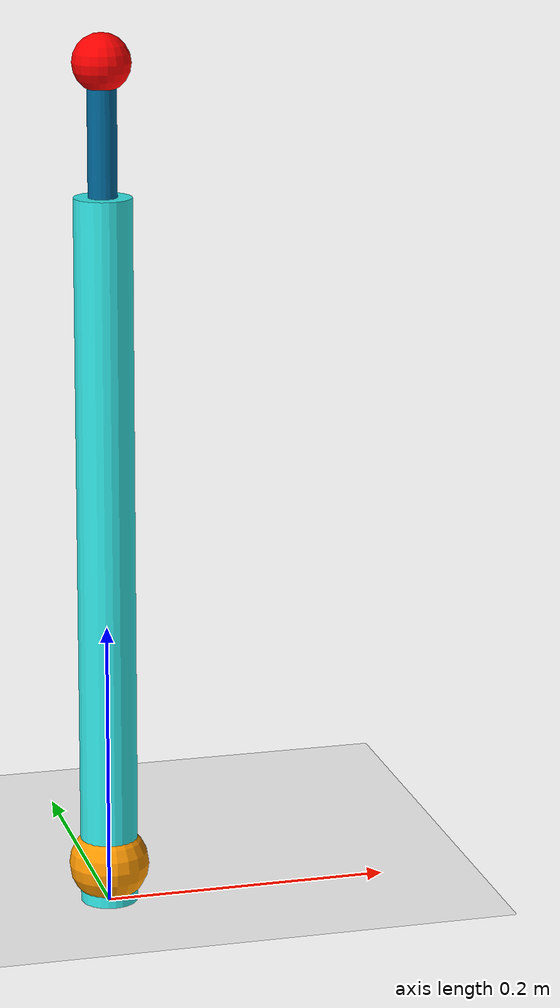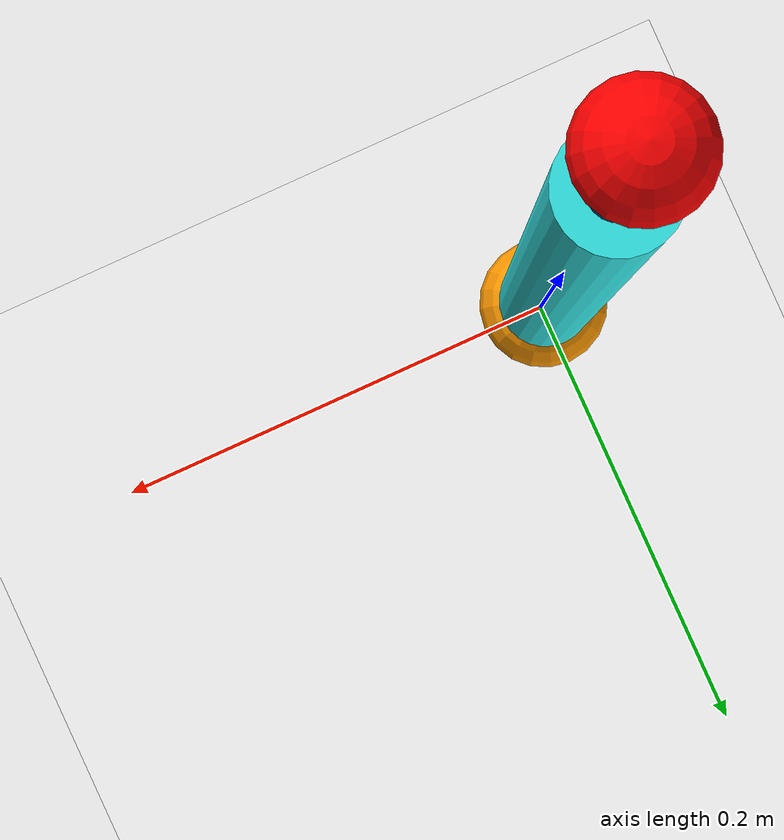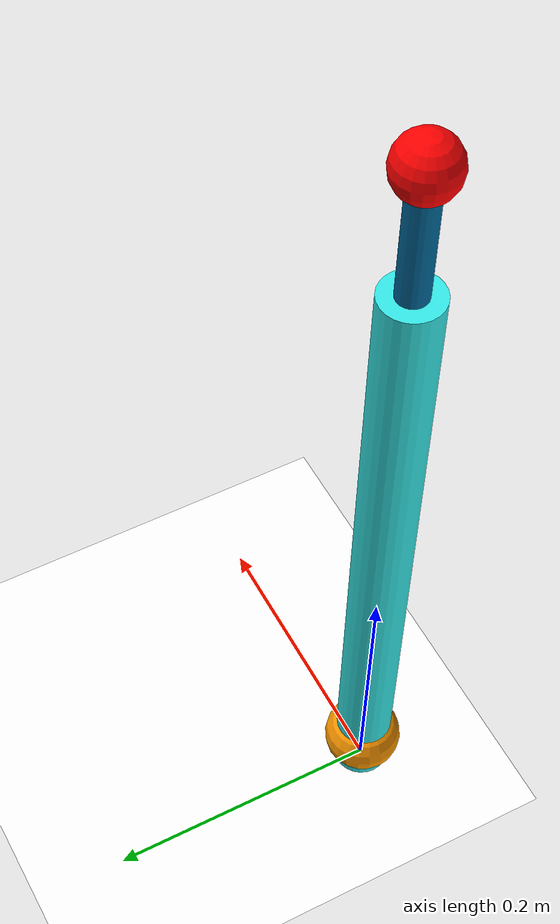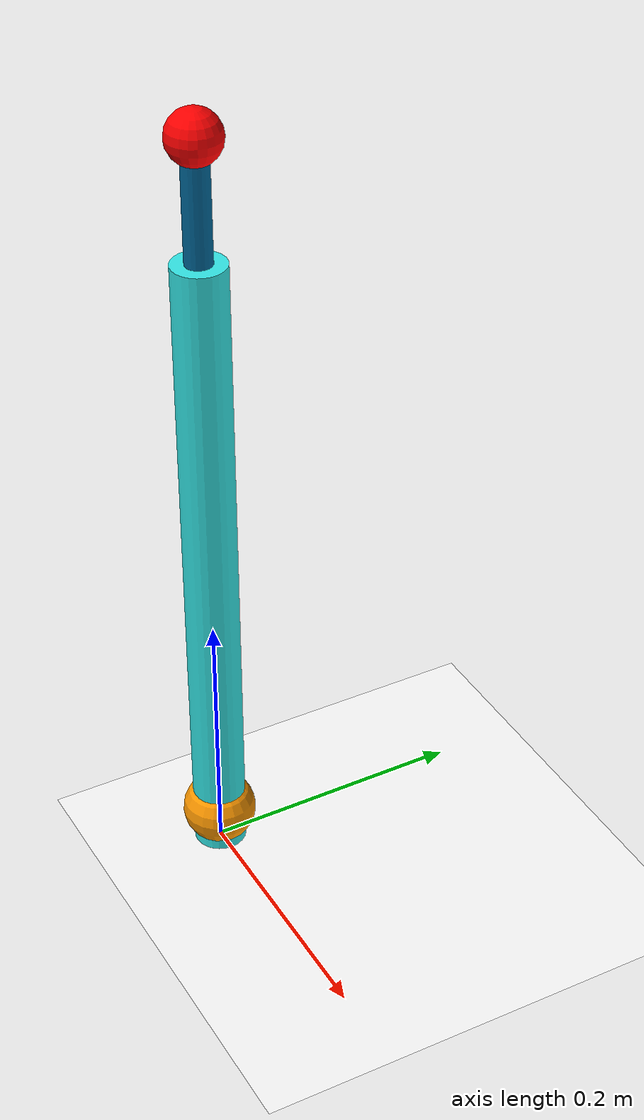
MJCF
<mujoco model="marrtino_arm">
    <custom>
        <numeric name="ndims" size="1" data="3"/>
        <numeric name="njoints" size="1" data="5"/>
    </custom>

	<compiler angle="radian" inertiafromgeom="true"/>

    <default>
		<joint armature="1" damping="1" limited="true"/>
		<geom contype="0" friction="1 0.1 0.1" rgba="0.7 0.7 0 1"/>
	</default>

    <option gravity="0 0 -9.81" integrator="RK4" timestep="0.01"/>

    <asset>
      <texture name="grid" type="2d" builtin="checker" rgb1=".6 .6 .6"
        rgb2=".8 .8 .8" width="100" height="100" mark="edge" markrgb="0.4 0.4 0.4"/>
      <material name="grid" texture="grid" texrepeat="10 10" texuniform="true"
        reflectance="0"/>
    </asset>

    <worldbody>

   	    <light name="top1" pos="0.5 0.5 1"/>
	    <light name="top2" pos="-0.5 0.5 1"/>
	    <light name="top3" pos="0.5 -0.5 1"/>
	    <light name="top4" pos="-0.5 -0.5 1"/>

		<!-- Arena -->
		<geom type="plane" conaffinity="1" contype="1" name="ground" pos="0.05 0.05 0" rgba="0.98 0.98 0.98 1" size="1 1 10"  material="grid"/>

		<!-- Arm -->
		<geom conaffinity="1" contype="1" fromto="0 0 0 0 0 0.09" name="root" rgba="0.9 0.4 0.6 1" size=".011" type="cylinder"/>
		<body name="base" pos="0 0 .091">
			<geom fromto="0 0 0 0 0 0.045" name="link0" rgba="0.0 0.4 0.6 1" size=".01" type="capsule"/>
			<joint axis="0 0 1" limited="true" range="-1.5707963267948966 1.5707963267948966" name="j0" pos="0 0 0" type="hinge"/>
            <geom fromto="0 0 0 0 0 0.01" name="jcolor0" rgba="0.0 0.0 1.0 0.5" size=".013" type="capsule"/>

            <body name="j0" pos="0 0 0.045">
				<geom fromto="0 0 0 0 0 0.11" name="link1" rgba="0.0 0.4 0.6 1" size=".01" type="capsule"/>
                <joint axis="0 1 0" limited="true" range="-1.5707963267948966 1.5707963267948966" name="j1" pos="0 0 0" type="hinge"/>
                <geom fromto="0 0 0 0 0 0.01" name="jcolor1" rgba="0.0 1.0 0.0 1" size=".012" type="capsule"/>

                <body name="j1" pos="0 0 0.11">
                    <geom fromto="0 0 0 0 0 0.11" name="link2" rgba="0.0 0.4 0.6 1" size=".01" type="capsule"/>
                    <joint axis="0 1 0" limited="true" range="-1.5707963267948966 1.5707963267948966" name="j2" pos="0 0 0" type="hinge"/>
                    <geom fromto="0 0 0 0 0 0.01" name="jcolor2" rgba="0.0 1.0 0.0 1" size=".012" type="capsule"/>

                    <body name="j2" pos="0 0 0.11">
                        <geom fromto="0 0 0 0 0 0.115" name="link3" rgba="0.0 0.4 0.6 1" size=".01" type="capsule"/>
                        <joint axis="0 1 0" limited="true" range="-1.5707963267948966 1.5707963267948966" name="j3" pos="0 0 0" type="hinge"/>
                        <geom fromto="0 0 0 0 0 0.01" name="jcolor3" rgba="0.0 1.0 0.0 1" size=".012" type="capsule"/>

                        <body name="j3" pos="0 0 0.115">
                            <geom fromto="0 0 0 0 0 0.12" name="link4" rgba="   0.0 0.4 0.6 1" size=".01" type="capsule"/>
                            <joint axis="1 0 0" limited="true" range="-1.5707963267948966 1.5707963267948966" name="j4" pos="0 0 0" type="hinge"/>
                            <geom fromto="0 0 0 0 0 0.01" name="jcolor4" rgba="1.0 0.0 0.0 1" size=".012" type="capsule"/>

                            <body name="fingertip" pos="0 0 0.12">
                                <geom contype="0" name="fingertip" pos="0 0 0" rgba="0.99 0.0 0.0 1" size=".020" type="sphere"/>
                            </body>
                        </body>
                    </body>
                </body>
			</body>
        </body>

		<!-- Target -->
		<body name="target" pos="0 0 .0281">
    		<geom conaffinity="1" contype="1" name="target" rgba="1 0.6 0 1" size=".028 0.001" type="sphere"/>
			<joint armature="0" axis="1 0 0" damping="0" limited="false" name="target_x" pos="0 0 0" type="slide"/>
			<joint armature="0" axis="0 1 0" damping="0" limited="false" name="target_y" pos="0 0 0"  type="slide"/>
		</body>

		<!-- Objects -->
		<body name="obstacle1" pos="0 0 0.251" >
            <geom name="obs1" rgba="0.2 0.9 0.9 1" type="cylinder" size="0.02 0.25" density="0.1" contype="1" conaffinity="1" />
            <joint name="obs1_x" type="slide" pos="0 0 0" axis="1 0 0" range="-0.6 0.6" stiffness="0" damping="0" frictionloss="0.001" armature="0" />
            <joint name="obs1_y" type="slide" pos="0 0 0" axis="0 1 0" range="-0.6 0.6" stiffness="0" damping="0" frictionloss="0.001" armature="0" />
        </body>

		<body name="obstacle2" pos="0 0 0.251" >
            <geom name="obs2" rgba="0.2 0.9 0.9 1" type="cylinder" size="0.02 0.25" density="0.1" contype="1" conaffinity="1" />
            <joint name="obs2_x" type="slide" pos="0 0 0" axis="1 0 0" range="-0.6 0.6" stiffness="0" damping="0" frictionloss="0.001" armature="0" />
            <joint name="obs2_y" type="slide" pos="0 0 0" axis="0 1 0" range="-0.6 0.6" stiffness="0" damping="0" frictionloss="0.001" armature="0" />
        </body>

		<body name="obstacle3" pos="0 0 0.251" >
            <geom name="obs3" type="cylinder" rgba="0.2 0.9 0.9 1" size="0.02 0.25" density="0.1" contype="1" conaffinity="1" />
            <joint type="slide" name="obs3_x" pos="0 0 0" axis="1 0 0" range="-0.6 0.6" stiffness="0" damping="0" frictionloss="0.001" armature="0" />
            <joint type="slide" name="obs3_y" pos="0 0 0" axis="0 1 0" range="-0.6 0.6" stiffness="0" damping="0" frictionloss="0.001" armature="0" />
        </body>

	</worldbody>

    <actuator>
		<motor ctrllimited="true" ctrlrange="-1.0 1.0" gear="200.0" joint="j0"/>
		<motor ctrllimited="true" ctrlrange="-1.0 1.0" gear="200.0" joint="j1"/>
		<motor ctrllimited="true" ctrlrange="-1.0 1.0" gear="200.0" joint="j2"/>
		<motor ctrllimited="true" ctrlrange="-1.0 1.0" gear="200.0" joint="j3"/>
		<motor ctrllimited="true" ctrlrange="-1.0 1.0" gear="200.0" joint="j4"/>
	</actuator>
</mujoco>
